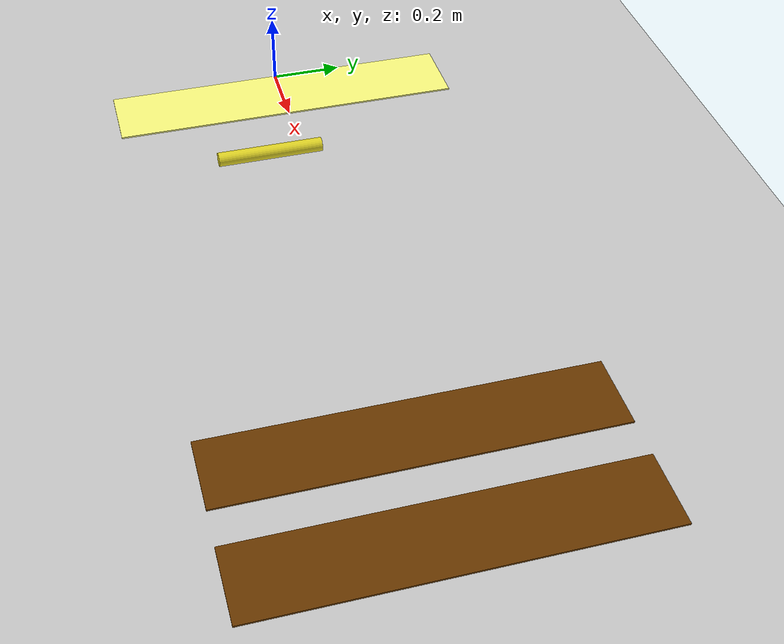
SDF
<?xml version="1.0" ?>
<sdf version="1.5">
    <world name="default">

        <physics type="ode">
        <max_step_size>0.0002</max_step_size>
        <real_time_factor>1</real_time_factor>
        <real_time_update_rate>5000</real_time_update_rate>
        <gravity>0 0 -9.81</gravity>
            <ode>
                <solver>
                <type>quick</type>
                <iters>50</iters>
                <sor>1.3</sor>
                </solver>
                <constraints>
                <cfm>0.0</cfm>
                <erp>0.2</erp>
                <contact_max_correcting_vel>10.0</contact_max_correcting_vel>
                <contact_surface_layer>0.001</contact_surface_layer>
                </constraints>
            </ode>
        </physics>

        <scene>
        <sky>
            <clouds>
                <speed>12</speed>
            </clouds>
        </sky>
        </scene>
        <!-- A global light source -->
        <include>
            <uri>model://sun</uri>
        </include>
        <!-- A ground plane -->
        <include>
            <uri>model://ground_plane</uri>
        </include>

        <model name="plate_1">
            <static>true</static>
            <link name="slip_plate">
                <pose>0.1 0.0 0 0 0 0</pose>
                <collision name="normal_plate_rr">
                    <geometry>
                        <box>
                            <size>0.2 1.0 0.005</size>
                        </box>
                    </geometry>
                    <surface>
                        <friction>
                        <ode>
                            <mu>0.45</mu>
                            <mu2>0.45</mu2>
                        </ode>
                        </friction>
                    </surface>
                </collision>
                <visual name="static_normal_plate_rr_visual">
                    <geometry>
                        <box>
                            <size>0.2 1.0 0.005</size>
                        </box>
                    </geometry>
                    <material>
                        <ambient>0.4 0.4 0.4 1.0</ambient>
                        <diffuse>1 1 0.5 1.0</diffuse>
                    </material>
                </visual>
            </link>
        </model>

        <model name="normal_plate_rl">
            <static>true</static>
            <link name="normal_plate_rl">
                <pose>1.5 0.0 0 0 0 0</pose>
                <collision name="normal_plate_rl">
                    <geometry>
                        <box>
                            <size>0.2 1.0 0.005</size>
                        </box>
                    </geometry>
                    <surface>
                        <friction>
                        <ode>
                            <mu>01.35</mu>
                            <mu2>01.35</mu2>
                        </ode>
                        </friction>
                    </surface>
                </collision>
                <visual name="static_normal_plate_rl_visual">
                    <geometry>
                        <box>
                            <size>0.2 1.0 0.005</size>
                        </box>
                    </geometry>
                    <material>
                        <ambient>0.2 0.2 0.2 1.0</ambient>
                        <diffuse>.421 0.225 0.0 1.0</diffuse>
                    </material>
                </visual>
            </link>
        </model>

        <model name="slip_plate_fr">
            <static>true</static>
            <link name="slip_plate_fr">
                <pose>1.8 0.0 0 0 0 0</pose>
                <collision name="slip_plate_fr">
                    <geometry>
                        <box>
                            <size>0.2 1.0 0.005</size>
                        </box>
                    </geometry>
                    <surface>
                        <friction>
                        <ode>
                            <mu>1.35</mu>
                            <mu2>1.35</mu2>
                        </ode>
                        </friction>
                    </surface>
                </collision>
                <visual name="static_slip_plate_fr_visual">
                    <geometry>
                        <box>
                            <size>0.2 1.0 0.005</size>
                        </box>
                    </geometry>
                    <material>
                        <ambient>0.2 0.2 0.2 1.0</ambient>
                        <diffuse>.421 0.225 0.0 1.0</diffuse>
                    </material>
                </visual>
            </link>
        </model>

        <model name="cylinder">
        <pose>0.4 -0.1 0.02 1.57 0 0</pose>
        <static>true</static>
        <link name="link">
            <collision name="collision">
            <geometry>
                <cylinder>
                <radius>0.02</radius>
                <length>0.3</length>
                </cylinder>
            </geometry>
            <surface>
                <friction>
                <ode>
                    <mu>0.45</mu> <!-- Reference the friction values from the material -->
                    <mu2>0.45</mu2>
                </ode>
                </friction>
            </surface>
            </collision>
            <visual name="visual">
            <geometry>
                <cylinder>
                <radius>0.02</radius>
                <length>0.3</length>
                </cylinder>
            </geometry>
            <material>
                <script>
                <uri>file://media/materials/scripts/gazebo.material</uri>
                <name>Gazebo/Yellow</name>
                </script>
            </material>
            </visual>
        </link>
        </model>

    </world>

</sdf>
